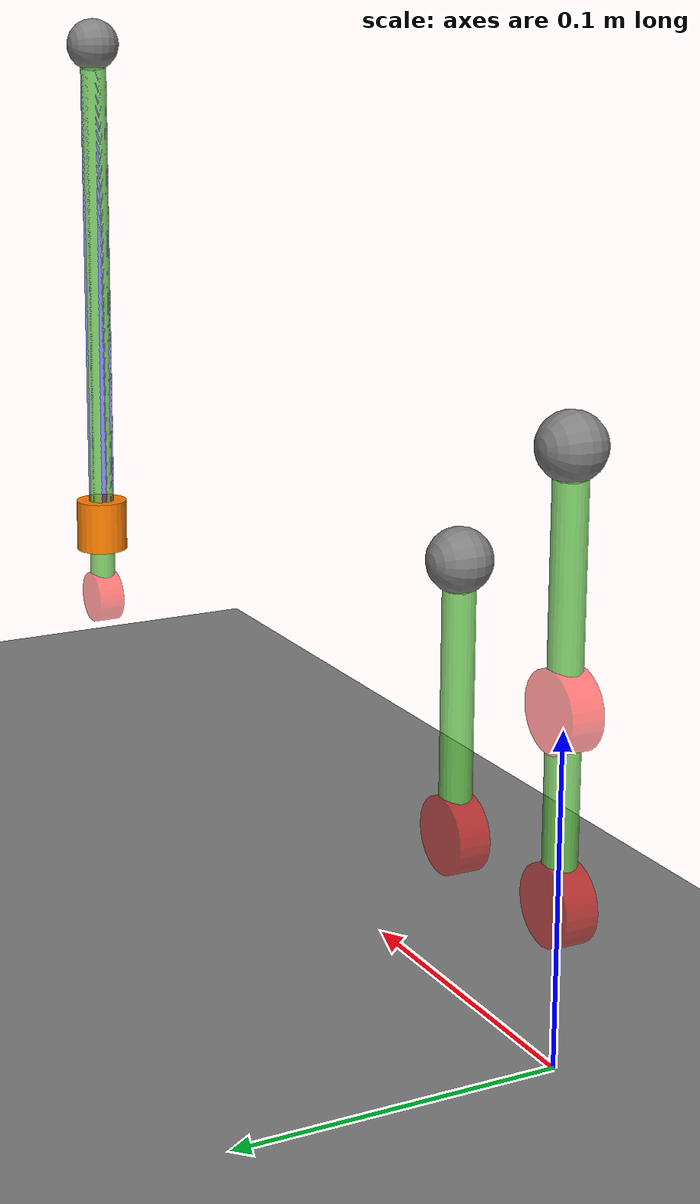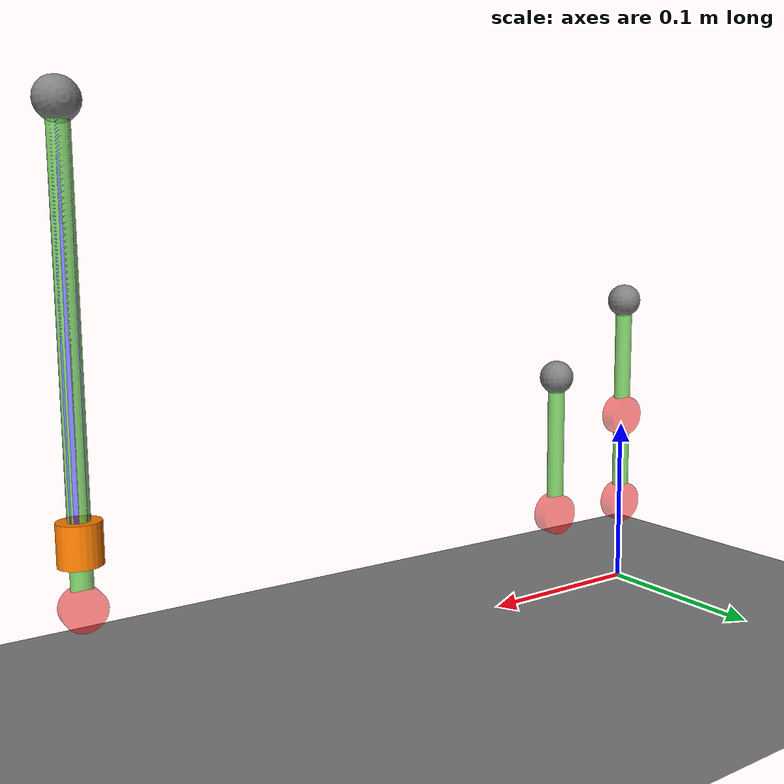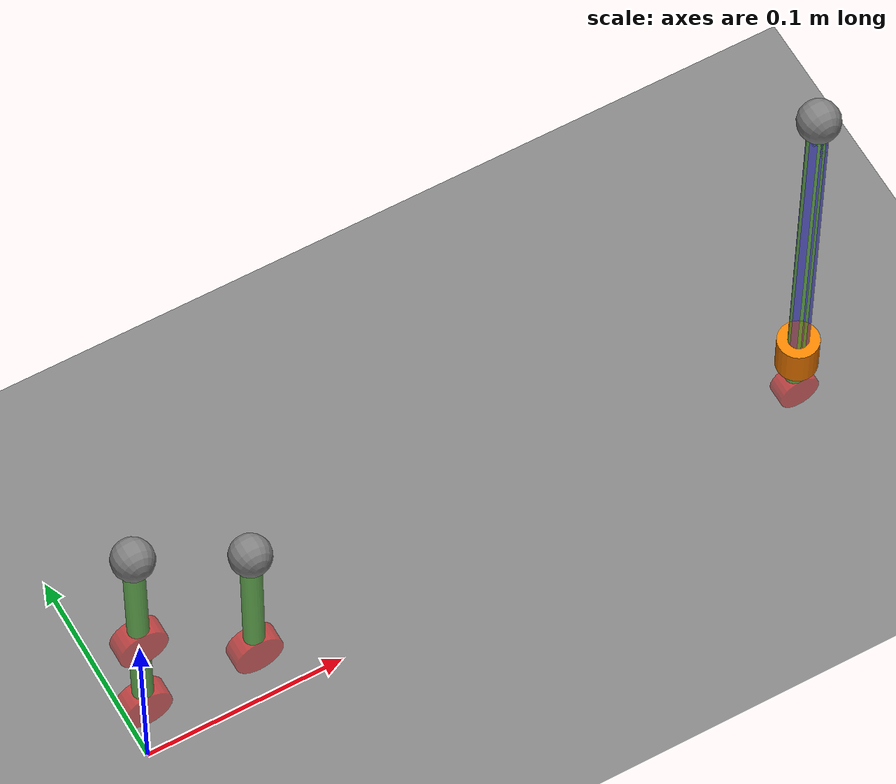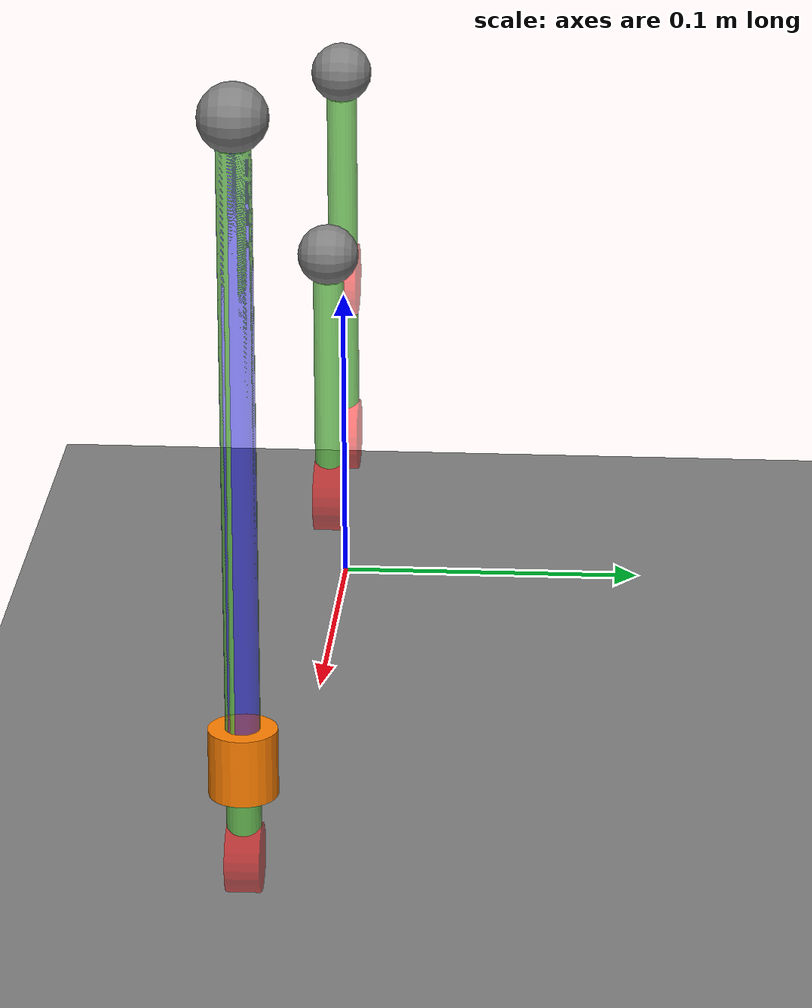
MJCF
<mujoco model="optimus_knee">
  <option timestep="1e-4" gravity="0 0 -9.81"/>

  <asset>
    <texture type="skybox" builtin="gradient" rgb1="0.6 0.8 1" rgb2="0.2 0.4 0.8" width="300" height="300"/>
    <texture name="grid" type="2d" builtin="checker" rgb1="0.1 0.1 0.1" rgb2="0.9 0.9 0.9" width="150" height="150"/>
    <material name="grid" texture="grid" texrepeat="10 10" reflectance="0.2"/>
  </asset>

  <worldbody>
    <light name="top" pos="0 0 10"/>
    <body name="ground" pos="0 0 0">
        <geom type="plane" size="2 2 0.1" material="grid"/>
    </body>

    <body name="OAB" pos="0 0 0.05" euler="90 0 90">
      <joint name="O" type="hinge"
             axis="0 0 1" stiffness="0"
             springref="0" damping="0.02" limited="true" range="-60 135"/>
      <geom name="point O" type="cylinder"
            size="0.012 0.005" rgba="1 0 0 0.5"
            euler="0 0 0" contype="0"/>
      <geom name="link OA" type="cylinder"
            size="0.005 0.028"
            rgba="0.4 0.8 0.3 0.8"
            contype="0" euler="0 90 0" pos="0.028 0 0"/>
      <body name="AB" pos="0.056 0 0">
        <joint name="A" type="hinge"
               axis="0 0 1" stiffness="0"
               springref="0" damping="0.02" limited="true" range="-150 -30"/>
        <geom name="point A" type="cylinder"
              size="0.012 0.005" rgba="1 0 0 0.5"
              euler="0 0 0" contype="0"/>
        <geom name="link AB" type="cylinder"
              size="0.005 0.0364" rgba="0.4 0.8 0.3 0.8"
              contype="0" euler="0 90 0" pos="0.0364 0 0"/>
        <site name="B1" size="0.01" pos="0.0728 0 0"/>
      </body>
    </body>
    <body name="CB" pos="0.056 0 0.05" euler="90 0 90">
      <joint name="C" type="hinge"
             axis="0 0 1" stiffness="0"
             springref="0" damping="0.02" limited="true" range="-75 68"/>
      <geom name="point C" type="cylinder"
            size="0.012 0.005" rgba="1 0 0 0.5"
            euler="0 0 0" contype="0"/>
      <geom name="link CB" type="cylinder"
            size="0.005 0.042"
            rgba="0.4 0.8 0.3 0.8"
            contype="0" euler="0 90 0" pos="0.042 0 0"/>
      <site name="B2" size="0.01" pos="0.084 0 0"/>
    </body>
    <body name="DB" pos="0.336 0 0.05" euler="90 0 90">
      <joint name="D" type="hinge"
             axis="0 0 1" stiffness="0"
             springref="0" damping="0.02" limited="true" range="0 85"/>
      <geom name="point D" type="cylinder"
            size="0.01 0.005" rgba="1 0 0 0.5"
            euler="0 0 0" contype="0"/>
      <geom name="link DS" type="cylinder"
            size="0.005 0.11"
            rgba="0.4 0.8 0.3 0.8"
            contype="0" euler="0 90 0" pos="0.11 0 0"/>
      <body name="slider SB" euler="0 0 0" pos="0.02 0 0">
        <joint name="S" type="slide"
               axis="1 0 0" stiffness="0"
               springref="0" limited="true"
               range="0 0.16"/>
        <geom name="point S" type="cylinder"
              size="0.01 0.01" rgba="1 0.5 0 0.9"
              euler="0 90 0" contype="0" pos="0.01 0 0"/>
        <geom name="link SB" type="cylinder"
              euler="0 90 0" pos="0.1 0 0"
              size="0.005 0.1" rgba="0 0 1 0.5"/>
        <site name="B3" size="0.01" pos="0.2 0 0"/>
      </body>
    </body>
  </worldbody>

  <equality>
    <connect site1="B1" site2="B2" solimp="0.99 0.999 0.01" solref="0.008 0.4"/>
    <connect site1="B2" site2="B3" solimp="0.99 0.999 0.01" solref="0.008 0.4"/>
  </equality>

  <actuator>
    <motor name="slider motor" joint="S" gear="1"/>
  </actuator>

  <sensor>
    <jointpos name="O_ang" joint="O"/>
    <jointvel name="O_vel" joint="O"/>
    <framepos name="B_pos" objtype="site" objname="B1"/>
  </sensor>
</mujoco>
